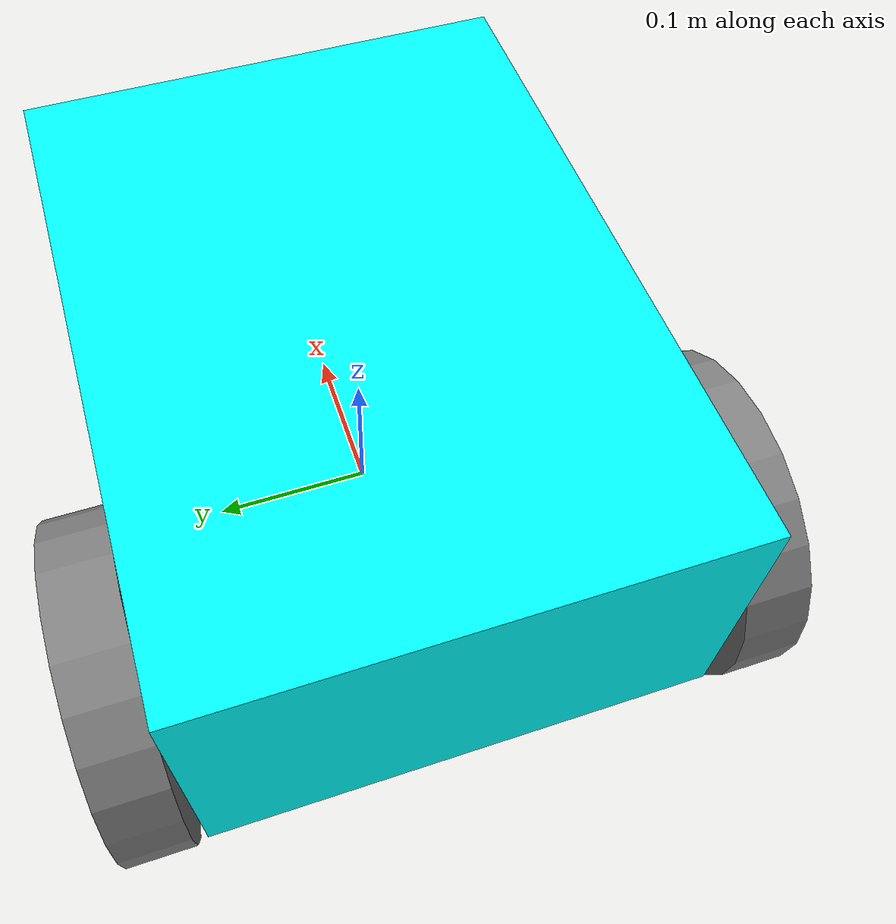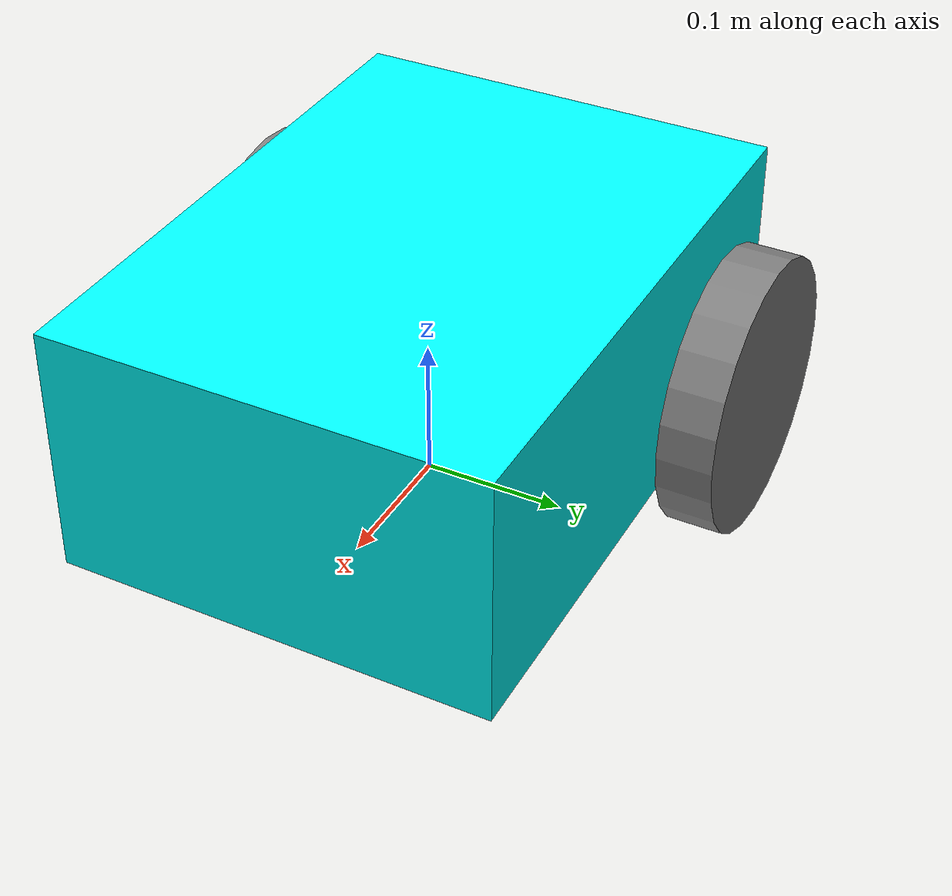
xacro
<?xml version="1.0"?>
<robot name="dif_bot" xmlns:xacro="http://ros.org/wiki/xacro">

  <xacro:property name="base_width" value="0.31"/>
  <xacro:property name="base_length" value="0.42"/>
  <xacro:property name="base_height" value="0.18"/>
  <xacro:property name="wheel_radius" value="0.10"/>
  <xacro:property name="wheel_width" value="0.04"/>
  <xacro:property name="wheel_ygap" value="0.025"/>
  <xacro:property name="wheel_zoff" value="0.05"/>
  <xacro:property name="wheel_xoff" value="0.12"/>
  <xacro:property name="caster_xoff" value="0.14"/>

  <xacro:macro name="wheel" params="prefix x_reflect y_reflect">
    <link name="${prefix}_link">
      <visual>
        <origin xyz="0 0 0" rpy="${pi/2} 0 0"/>
        <geometry>
          <cylinder radius="${wheel_radius}" length="${wheel_width}"/>
        </geometry>
        <material name="Gray">
          <color rgba="0.5 0.5 0.5 1.0"/>
        </material>
      </visual>
    </link>

    <joint name="${prefix}_joint" type="continuous">
      <parent link="base_link"/>
      <child link="${prefix}_link"/>
      <origin xyz="${x_reflect*wheel_xoff} ${y_reflect*(base_width/2+wheel_ygap)} ${-wheel_zoff}" rpy="0 0 0"/>
      <axis xyz="0 1 0"/>
    </joint>
  </xacro:macro>

  <link name="base_footprint"/>

  <joint name="base_joint" type="fixed">
    <parent link="base_footprint"/>
    <child link="base_link"/>
    <origin xyz="0 0 ${wheel_radius}" rpy="0 0 0"/>
  </joint>

  <link name="base_link">
    <visual>
      <geometry>
        <box size="${base_length} ${base_width} ${base_height}"/>
      </geometry>
      <material name="Cyan">
        <color rgba="0 1.0 1.0 1.0"/>
      </material>
    </visual>
  </link>

  <xacro:wheel prefix="drivewhl_l" x_reflect="-1" y_reflect="1" />
  <xacro:wheel prefix="drivewhl_r" x_reflect="-1" y_reflect="-1" />

</robot>
